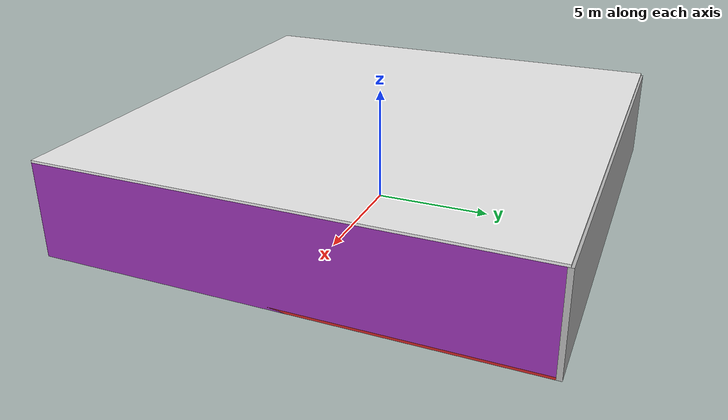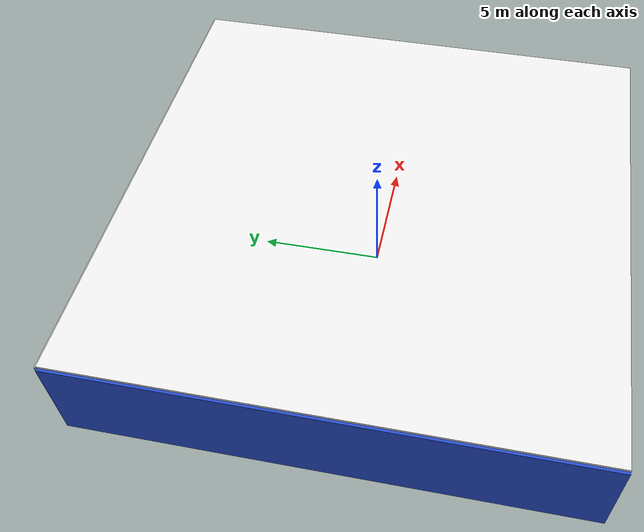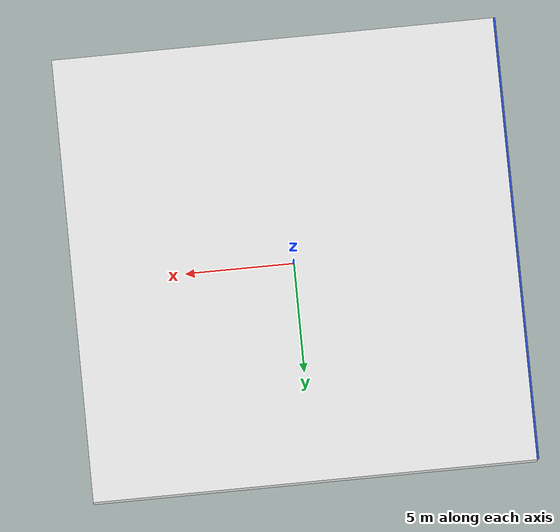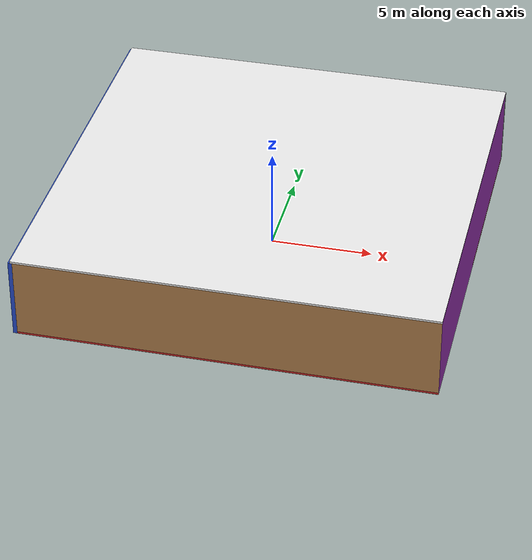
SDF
<sdf version="1.4">
 <world name="default">
  <physics type="ode">
   <max_step_size>0.001</max_step_size>
   <real_time_factor>1</real_time_factor>
   <real_time_update_rate>1000</real_time_update_rate>
   <gravity>0 0 -9.8</gravity>
  </physics>
  <scene><ambient>0.4 0.4 0.4 1</ambient><background>0.7 0.7 0.7 1</background><shadows>1</shadows></scene>
  <model name="Surrounding">
   <static>1</static>
   <link name="Ceiling">
    <collision name="Ceiling_Collision"><geometry><box><size>20 20 0.1</size></box></geometry></collision>
    <visual name="Ceiling_Visual">
     <geometry><box><size>20 20 0.1</size></box></geometry>
     <material>
      <script><uri>file://media/materials/scripts/gazebo.material</uri><name>Gazebo/White</name></script>
     </material>
    </visual>
    <pose>0 0 4.05 0 0 0</pose>
   </link>
   <link name="Wall_South">
    <collision name="Wall_South_Collision">
     <geometry><box><size>20 0 4</size></box></geometry>
     <pose>0 0 2 0 -0 0</pose>
    </collision>
    <visual name="Wall_South_Visual">
     <pose>0 0 2 0 -0 0</pose>
     <geometry><box><size>20 0 4</size></box></geometry>
     <material>
      <script><uri>file://media/materials/scripts/gazebo.material</uri><name>Gazebo/WoodPallet</name></script>
     </material>
    </visual>
    <velocity_decay><linear>0</linear><angular>0</angular></velocity_decay>
    <pose>0 -10 0 0 -0 0</pose>
   </link>
   <link name="Wall_East">
    <collision name="Wall_21_Collision">
     <geometry><box><size>20 0 4</size></box></geometry>
     <pose>0 0 2 0 -0 0</pose>
    </collision>
    <visual name="Wall_21_Visual">
     <pose>0 0 2 0 -0 0</pose>
     <geometry><box><size>20 0 4</size></box></geometry>
     <material>
      <script><uri>file://media/materials/scripts/gazebo.material</uri><name>Gazebo/Purple</name></script>
     </material>
    </visual>
    <velocity_decay><linear>0</linear><angular>0</angular></velocity_decay>
    <pose>10 0 0 0 -0 1.5708</pose>
   </link>
   <link name="Wall_North">
    <collision name="Wall_22_Collision">
     <geometry><box><size>20 0.2 4</size></box></geometry>
     <pose>0 0 2 0 -0 0</pose>
    </collision>
    <visual name="Wall_22_Visual">
     <pose>0 0 2 0 -0 0</pose>
     <geometry><box><size>20 0.2 4</size></box></geometry>
     <material>
      <script><uri>file://media/materials/scripts/gazebo.material</uri><name>Gazebo/JointAnchor</name></script>
     </material>
    </visual>
    <velocity_decay><linear>0</linear><angular>0</angular></velocity_decay>
    <pose>0 10 0 0 -0 0</pose>
   </link>
   <link name="Wall_West">
    <collision name="Wall_23_Collision">
     <geometry><box><size>20 0.2 4</size></box></geometry>
     <pose>0 0 2 0 -0 0</pose>
    </collision>
    <visual name="Wall_23_Visual">
     <pose>0 0 2 0 -0 0</pose>
     <geometry><box><size>20 0.2 4</size></box></geometry>
     <material>
      <script><uri>file://media/materials/scripts/gazebo.material</uri><name>Gazebo/Blue</name></script>
     </material>
    </visual>
    <velocity_decay><linear>0</linear><angular>0</angular></velocity_decay>
    <pose>-10 0 0 0 0 -1.5708</pose>
   </link>
   <link name="Ground_link">
    <collision name="collision">
     <pose>0 0 .05 0 -0 0</pose>
     <geometry><box><size>20 20 0.1</size></box></geometry>
    </collision>
    <visual name="visual">
     <pose>0 0 .05 0 -0 0</pose>
     <geometry><box><size>20 20 0.1</size></box></geometry>
     <material>
      <script><uri>file://media/materials/scripts/gazebo.material</uri><name>Gazebo/RedBright</name></script>
     </material>
    </visual>
   </link>
   <static>1</static>
  </model>
  <spherical_coordinates>
   <surface_model>EARTH_WGS84</surface_model>
   <latitude_deg>0</latitude_deg>
   <longitude_deg>0</longitude_deg>
   <elevation>0</elevation>
   <heading_deg>0</heading_deg>
  </spherical_coordinates>
  <light name="lightball_0" type="diffuse">
   <diffuse>0.8 0.8 0.8 1</diffuse>
   <specular>0.2 0.2 0.2 1</specular>
   <attenuation>
    <range>100</range>
    <constant>0.7</constant>
    <linear>0.01</linear>
    <quadratic>0.001</quadratic>
   </attenuation>
   <direction>-0.5 0.1 -0.9</direction>
   <pose>-4.49751051498 -5.59193023315 2.21832453821 0 0 0</pose>
  </light>
  <light name="lightball_1" type="diffuse">
   <diffuse>0.8 0.8 0.8 1</diffuse>
   <specular>0.2 0.2 0.2 1</specular>
   <attenuation>
    <range>100</range>
    <constant>0.7</constant>
    <linear>0.01</linear>
    <quadratic>0.001</quadratic>
   </attenuation>
   <direction>-0.5 0.1 -0.9</direction>
   <pose>6.53880903858 -7.80601133292 0.598640775638 0 0 0</pose>
  </light>
  <light name="lightball_2" type="diffuse">
   <diffuse>0.8 0.8 0.8 1</diffuse>
   <specular>0.2 0.2 0.2 1</specular>
   <attenuation>
    <range>100</range>
    <constant>0.7</constant>
    <linear>0.01</linear>
    <quadratic>0.001</quadratic>
   </attenuation>
   <direction>-0.5 0.1 -0.9</direction>
   <pose>1.22038702305 -8.69369930196 3.23966664445 0 0 0</pose>
  </light>
  <light name="lightball_3" type="diffuse">
   <diffuse>0.8 0.8 0.8 1</diffuse>
   <specular>0.2 0.2 0.2 1</specular>
   <attenuation>
    <range>100</range>
    <constant>0.7</constant>
    <linear>0.01</linear>
    <quadratic>0.001</quadratic>
   </attenuation>
   <direction>-0.5 0.1 -0.9</direction>
   <pose>9.14038331406 5.18639408503 1.58182995689 0 0 0</pose>
  </light>
  <light name="lightball_4" type="diffuse">
   <diffuse>0.8 0.8 0.8 1</diffuse>
   <specular>0.2 0.2 0.2 1</specular>
   <attenuation>
    <range>100</range>
    <constant>0.7</constant>
    <linear>0.01</linear>
    <quadratic>0.001</quadratic>
   </attenuation>
   <direction>-0.5 0.1 -0.9</direction>
   <pose>8.65825208568 -3.82475675051 2.29074679532 0 0 0</pose>
  </light>
  <light name="lightball_5" type="diffuse">
   <diffuse>0.8 0.8 0.8 1</diffuse>
   <specular>0.2 0.2 0.2 1</specular>
   <attenuation>
    <range>100</range>
    <constant>0.7</constant>
    <linear>0.01</linear>
    <quadratic>0.001</quadratic>
   </attenuation>
   <direction>-0.5 0.1 -0.9</direction>
   <pose>-5.01670364142 6.30574865178 0.613983158348 0 0 0</pose>
  </light>
  <light name="lightball_6" type="diffuse">
   <diffuse>0.8 0.8 0.8 1</diffuse>
   <specular>0.2 0.2 0.2 1</specular>
   <attenuation>
    <range>100</range>
    <constant>0.7</constant>
    <linear>0.01</linear>
    <quadratic>0.001</quadratic>
   </attenuation>
   <direction>-0.5 0.1 -0.9</direction>
   <pose>8.78992727267 0.187738970657 0.538570656514 0 0 0</pose>
  </light>
  <light name="lightball_7" type="diffuse">
   <diffuse>0.8 0.8 0.8 1</diffuse>
   <specular>0.2 0.2 0.2 1</specular>
   <attenuation>
    <range>100</range>
    <constant>0.7</constant>
    <linear>0.01</linear>
    <quadratic>0.001</quadratic>
   </attenuation>
   <direction>-0.5 0.1 -0.9</direction>
   <pose>-7.629699873 7.15707454468 3.17680571074 0 0 0</pose>
  </light>
  <light name="lightball_8" type="diffuse">
   <diffuse>0.8 0.8 0.8 1</diffuse>
   <specular>0.2 0.2 0.2 1</specular>
   <attenuation>
    <range>100</range>
    <constant>0.7</constant>
    <linear>0.01</linear>
    <quadratic>0.001</quadratic>
   </attenuation>
   <direction>-0.5 0.1 -0.9</direction>
   <pose>6.27069914631 3.05306684486 2.47515954054 0 0 0</pose>
  </light>
  <include>
   <uri>model://construction_cone</uri>
   <pose>-7.01785185283 4.34645106503 0 0 0 1.67192869096</pose>
  </include>
  <include><uri>model://table</uri><pose>-0.889590872578 -8.50125711358 0 0 0 0.652116965193</pose></include>
  <include><uri>model://cabinet</uri><pose>6.33344386577 -6.49670188204 0 0 0 1.67661615632</pose></include>
  <include>
   <uri>model://robocup_3Dsim_goal</uri>
   <pose>6.44044280286 -4.75675545887 0 0 0 2.73116496972</pose>
  </include>
  <include><uri>model://cabinet</uri><pose>6.48378490072 4.6773958391 0 0 0 2.71438202396</pose></include>
 </world>
</sdf>

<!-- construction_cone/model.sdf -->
<sdf version="1.5">
  <model name="Construction Cone">
    <link name="link">
      <collision name="collision">
        <geometry>
          <mesh>
            <scale>10 10 10</scale>
            <uri>file://isr-testbed/construction_cone/meshes/construction_cone.dae</uri>
          </mesh>
        </geometry>
      </collision>
      <visual name="visual">
        <geometry>
          <mesh>
            <scale>10 10 10</scale>
            <uri>file://isr-testbed/construction_cone/meshes/construction_cone.dae</uri>
          </mesh>
        </geometry>
      </visual>
    </link>
  </model>
</sdf>

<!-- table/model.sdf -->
<sdf version="1.5">
  <model name="table">
    <static>true</static>
    <link name="link">
      <collision name="surface">
        <pose>0 0 1.0 0 0 0</pose>
        <geometry>
          <box>
            <size>1.5 0.8 0.03</size>
          </box>
        </geometry>
        <surface>
          <friction>
            <ode>
              <mu>0.6</mu>
              <mu2>0.6</mu2>
            </ode>
          </friction>
        </surface>
      </collision>
      <visual name="visual1">
        <pose>0 0 1.0 0 0 0</pose>
        <geometry>
          <box>
            <size>1.5 0.8 0.03</size>
          </box>
        </geometry>
        <material>
          <script>
            <uri>model://media/materials/scripts/gazebo.material</uri>
            <name>Gazebo/Wood</name>
          </script>
        </material>
      </visual>
      <collision name="front_left_leg">
        <pose>0.68 0.38 0.5 0 0 0</pose>
        <geometry>
          <cylinder>
            <radius>0.02</radius>
            <length>1.0</length>
          </cylinder>
        </geometry>
      </collision>
      <visual name="front_left_leg">
        <pose>0.68 0.38 0.5 0 0 0</pose>
        <geometry>
          <cylinder>
            <radius>0.02</radius>
            <length>1.0</length>
          </cylinder>
        </geometry>
        <material>
          <script>
            <uri>model://media/materials/scripts/gazebo.material</uri>
            <name>Gazebo/Grey</name>
          </script>
        </material>
      </visual>
      <collision name="front_right_leg">
        <pose>0.68 -0.38 0.5 0 0 0</pose>
        <geometry>
          <cylinder>
            <radius>0.02</radius>
            <length>1.0</length>
          </cylinder>
        </geometry>
      </collision>
      <visual name="front_right_leg">
        <pose>0.68 -0.38 0.5 0 0 0</pose>
        <geometry>
          <cylinder>
            <radius>0.02</radius>
            <length>1.0</length>
          </cylinder>
        </geometry>
        <material>
          <script>
            <uri>model://media/materials/scripts/gazebo.material</uri>
            <name>Gazebo/Grey</name>
          </script>
        </material>
      </visual>
      <collision name="back_right_leg">
        <pose>-0.68 -0.38 0.5 0 0 0</pose>
        <geometry>
          <cylinder>
            <radius>0.02</radius>
            <length>1.0</length>
          </cylinder>
        </geometry>
      </collision>
      <visual name="back_right_leg">
        <pose>-0.68 -0.38 0.5 0 0 0</pose>
        <geometry>
          <cylinder>
            <radius>0.02</radius>
            <length>1.0</length>
          </cylinder>
        </geometry>
        <material>
          <script>
            <uri>model://media/materials/scripts/gazebo.material</uri>
            <name>Gazebo/Grey</name>
          </script>
        </material>
      </visual>
      <collision name="back_left_leg">
        <pose>-0.68 0.38 0.5 0 0 0</pose>
        <geometry>
          <cylinder>
            <radius>0.02</radius>
            <length>1.0</length>
          </cylinder>
        </geometry>
      </collision>
      <visual name="back_left_leg">
        <pose>-0.68 0.38 0.5 0 0 0</pose>
        <geometry>
          <cylinder>
            <radius>0.02</radius>
            <length>1.0</length>
          </cylinder>
        </geometry>
        <material>
          <script>
            <uri>model://media/materials/scripts/gazebo.material</uri>
            <name>Gazebo/Grey</name>
          </script>
        </material>
      </visual>
    </link>
  </model>
</sdf>

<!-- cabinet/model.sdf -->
<sdf version="1.5">
  <model name="cabinet">
    <static>true</static>
    <link name="cabinet_bottom_plate">
      <inertial>
        <pose>0 0 -1 0 0 0</pose>
        <inertia>
          <ixx>2.050000</ixx>
          <ixy>0</ixy>
          <ixz>0</ixz>
          <iyy>2.050000</iyy>
          <iyz>0</iyz>
          <izz>2.050000</izz>
        </inertia>
        <mass>25.000000</mass>
      </inertial>
      <collision name="cabinet_bottom_plate_geom">
        <pose>0 0 0.010000 0 0 0</pose>
        <geometry>
          <box>
            <size>0.450000 0.450000 0.020000</size>
          </box>
        </geometry>
      </collision>
      <visual name="cabinet_bottom_plate_geom_visual">
        <pose>0 0 0.010000 0 0 0</pose>
        <geometry>
          <box>
            <size>0.450000 0.450000 0.020000</size>
          </box>
        </geometry>
        <material>
          <script>
            <uri>model://media/materials/scripts/gazebo.material</uri>
            <name>Gazebo/Wood</name>
          </script>
        </material>
      </visual>
      <collision name="cabinet_bottom_plate_geom_cabinet_back_plate">
        <pose>0.235000 0 0.510000 0 0 0</pose>
        <geometry>
          <box>
            <size>0.020000 0.450000 1.020000</size>
          </box>
        </geometry>
      </collision>
      <visual name="cabinet_bottom_plate_geom_cabinet_back_plate_visual">
        <pose>0.235000 0 0.510000 0 0 0</pose>
        <geometry>
          <box>
            <size>0.020000 0.450000 1.020000</size>
          </box>
        </geometry>
        <material>
          <script>
            <uri>model://media/materials/scripts/gazebo.material</uri>
            <name>Gazebo/Wood</name>
          </script>
        </material>
      </visual>
      <collision name="cabinet_bottom_plate_geom_cabinet_left_plate">
        <pose>0 0.235000 0.510000 0 0 0</pose>
        <geometry>
          <box>
            <size>0.450000 0.020000 1.020000</size>
          </box>
        </geometry>
      </collision>
      <visual name="cabinet_bottom_plate_geom_cabinet_left_plate_visual">
        <pose>0 0.235000 0.510000 0 0 0</pose>
        <geometry>
          <box>
            <size>0.450000 0.020000 1.020000</size>
          </box>
        </geometry>
        <material>
          <script>
            <uri>model://media/materials/scripts/gazebo.material</uri>
            <name>Gazebo/Wood</name>
          </script>
        </material>
      </visual>
      <collision name="cabinet_bottom_plate_geom_cabinet_middle_plate">
        <pose>0 0 0.510000 0 0 0</pose>
        <geometry>
          <box>
            <size>0.450000 0.450000 0.020000</size>
          </box>
        </geometry>
      </collision>
      <visual name="cabinet_bottom_plate_geom_cabinet_middle_plate_visual">
        <pose>0 0 0.510000 0 0 0</pose>
        <geometry>
          <box>
            <size>0.450000 0.450000 0.020000</size>
          </box>
        </geometry>
        <material>
          <script>
            <uri>model://media/materials/scripts/gazebo.material</uri>
            <name>Gazebo/Wood</name>
          </script>
        </material>
      </visual>
      <collision name="cabinet_bottom_plate_geom_cabinet_right_plate">
        <pose>0 -0.235000 0.510000 0 0 0</pose>
        <geometry>
          <box>
            <size>0.450000 0.020000 1.020000</size>
          </box>
        </geometry>
      </collision>
      <visual name="cabinet_bottom_plate_geom_cabinet_right_plate_visual">
        <pose>0 -0.235000 0.510000 0 0 0</pose>
        <geometry>
          <box>
            <size>0.450000 0.020000 1.020000</size>
          </box>
        </geometry>
        <material>
          <script>
            <uri>model://media/materials/scripts/gazebo.material</uri>
            <name>Gazebo/Wood</name>
          </script>
        </material>
      </visual>
      <collision name="cabinet_bottom_plate_geom_cabinet_top_plate">
        <pose>0 0 1.010000 0 0 0</pose>
        <geometry>
          <box>
            <size>0.450000 0.450000 0.020000</size>
          </box>
        </geometry>
      </collision>
      <visual name="cabinet_bottom_plate_geom_cabinet_top_plate_visual">
        <pose>0 0 1.010000 0 0 0</pose>
        <geometry>
          <box>
            <size>0.450000 0.450000 0.020000</size>
          </box>
        </geometry>
        <material>
          <script>
            <uri>model://media/materials/scripts/gazebo.material</uri>
            <name>Gazebo/Wood</name>
          </script>
        </material>
      </visual>
    </link>
  </model>
</sdf>

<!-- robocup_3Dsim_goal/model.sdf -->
<sdf version="1.5">
  <model name="robocup_3d_goal">
    <static>true</static>
    <link name="left_post">
      <pose>0 1.05 0.45 0 0 0</pose>
      <collision name="collision">
        <geometry>
          <cylinder>
            <radius>0.05</radius>
            <length>0.9</length>
          </cylinder>
        </geometry>
      </collision>
      <visual name="visual">
        <geometry>
          <cylinder>
            <radius>0.05</radius>
            <length>0.9</length>
          </cylinder>
        </geometry>
        <material>
          <script>
            <uri>file://media/materials/scripts/gazebo.material</uri>
            <name>Gazebo/ZincYellow</name>
          </script>
        </material>
      </visual>
    </link>
    <link name="left_support_horiz_lower">
      <pose>0.30 1.05 0.01 0 0 0</pose>
      <collision name="collision">
        <geometry>
          <box>
            <size>0.50 0.02 0.02</size>
          </box>
        </geometry>
      </collision>
      <visual name="visual">
        <geometry>
          <box>
            <size>0.50 0.02 0.02</size>
          </box>
        </geometry>
        <material>
          <script>
            <uri>file://media/materials/scripts/gazebo.material</uri>
            <name>Gazebo/White</name>
          </script>
        </material>
      </visual>
    </link>
    <link name="left_support_horiz_upper">
      <pose>0.30 1.05 0.79 0 0 0</pose>
      <collision name="collision">
        <geometry>
          <box>
            <size>0.50 0.02 0.02</size>
          </box>
        </geometry>
      </collision>
      <visual name="visual">
        <geometry>
          <box>
            <size>0.50 0.02 0.02</size>
          </box>
        </geometry>
        <material>
          <script>
            <uri>file://media/materials/scripts/gazebo.material</uri>
            <name>Gazebo/White</name>
          </script>
        </material>
      </visual>
    </link>
    <link name="left_support_vertical">
      <pose>0.56 1.05 0.4 0 1.5708 0</pose>
      <collision name="collision">
        <geometry>
          <box>
            <size>0.80 0.02 0.02</size>
          </box>
        </geometry>
      </collision>
      <visual name="visual">
        <geometry>
          <box>
            <size>0.80 0.02 0.02</size>
          </box>
        </geometry>
        <material>
          <script>
            <uri>file://media/materials/scripts/gazebo.material</uri>
            <name>Gazebo/White</name>
          </script>
        </material>
      </visual>
    </link>
    <link name="right_support_horiz_lower">
      <pose>0.30 -1.05 0.01 0 0 0</pose>
      <collision name="collision">
        <geometry>
          <box>
            <size>0.50 0.02 0.02</size>
          </box>
        </geometry>
      </collision>
      <visual name="visual">
        <geometry>
          <box>
            <size>0.50 0.02 0.02</size>
          </box>
        </geometry>
        <material>
          <script>
            <uri>file://media/materials/scripts/gazebo.material</uri>
            <name>Gazebo/White</name>
          </script>
        </material>
      </visual>
    </link>
    <link name="right_support_horiz_upper">
      <pose>0.30 -1.05 0.79 0 0 0</pose>
      <collision name="collision">
        <geometry>
          <box>
            <size>0.50 0.02 0.02</size>
          </box>
        </geometry>
      </collision>
      <visual name="visual">
        <geometry>
          <box>
            <size>0.50 0.02 0.02</size>
          </box>
        </geometry>
        <material>
          <script>
            <uri>file://media/materials/scripts/gazebo.material</uri>
            <name>Gazebo/White</name>
          </script>
        </material>
      </visual>
    </link>
    <link name="right_support_vertical">
      <pose>0.56 -1.05 0.4 0 1.5708 0</pose>
      <collision name="collision">
        <geometry>
          <box>
            <size>0.80 0.02 0.02</size>
          </box>
        </geometry>
      </collision>
      <visual name="visual">
        <geometry>
          <box>
            <size>0.80 0.02 0.02</size>
          </box>
        </geometry>
        <material>
          <script>
            <uri>file://media/materials/scripts/gazebo.material</uri>
            <name>Gazebo/White</name>
          </script>
        </material>
      </visual>
    </link>
    <link name="center_support_horiz_lower">
      <pose>0.56 0 0.01 0 1.5708 0</pose>
      <collision name="collision">
        <geometry>
          <box>
            <size>0.02 2.08 0.02</size>
          </box>
        </geometry>
      </collision>
      <visual name="visual">
        <geometry>
          <box>
            <size>0.02 2.08 0.02</size>
          </box>
        </geometry>
        <material>
          <script>
            <uri>file://media/materials/scripts/gazebo.material</uri>
            <name>Gazebo/White</name>
          </script>
        </material>
      </visual>
    </link>
    <link name="center_support_horiz_upper">
      <pose>0.56 0 0.79 0 1.5708 0</pose>
      <collision name="collision">
        <geometry>
          <box>
            <size>0.02 2.08 0.02</size>
          </box>
        </geometry>
      </collision>
      <visual name="visual">
        <geometry>
          <box>
            <size>0.02 2.08 0.02</size>
          </box>
        </geometry>
        <material>
          <script>
            <uri>file://media/materials/scripts/gazebo.material</uri>
            <name>Gazebo/White</name>
          </script>
        </material>
      </visual>
    </link>
    <link name="right_post">
      <pose>0 -1.05 0.45 0 0 0</pose>
      <collision name="collision">
        <geometry>
          <cylinder>
            <radius>0.05</radius>
            <length>0.9</length>
          </cylinder>
        </geometry>
      </collision>
      <visual name="visual">
        <geometry>
          <cylinder>
            <radius>0.05</radius>
            <length>0.9</length>
          </cylinder>
        </geometry>
        <material>
          <script>
            <uri>file://media/materials/scripts/gazebo.material</uri>
            <name>Gazebo/ZincYellow</name>
          </script>
        </material>
      </visual>
    </link>
    <link name="crossbar">
      <pose>0 0 0.85 1.57 1.57 0</pose>
      <collision name="collision">
        <geometry>
          <cylinder>
            <radius>0.05</radius>
            <length>2.0</length>
          </cylinder>
        </geometry>
      </collision>
      <visual name="visual">
        <geometry>
          <cylinder>
            <radius>0.05</radius>
            <length>2.0</length>
          </cylinder>
        </geometry>
        <material>
          <script>
            <uri>file://media/materials/scripts/gazebo.material</uri>
            <name>Gazebo/ZincYellow</name>
          </script>
        </material>
      </visual>
    </link>
    <link name="center_net">
      <pose>0.56 0 0.40 0 0 0</pose>
      <collision name="collision">
        <geometry>
          <box>
            <size>0.01 2.1 0.80</size>
          </box>
        </geometry>
      </collision>
      <visual name="visual">
        <geometry>
          <box>
            <size>0.01 2.1 0.80</size>
          </box>
        </geometry>
        <material>
          <script>
            <uri>model://../model_source/models/robocup09_spl_field/materials/scripts/</uri>
            <uri>model://../model_source/models/robocup09_spl_field/materials/textures/</uri>
            <name>RoboCup/Net</name>
          </script>
        </material>
      </visual>
    </link>
    <link name="left_net">
      <pose>0.30 1.05 0.40 0 0 0</pose>
      <collision name="collision">
        <geometry>
          <box>
            <size>0.50 0.01 0.76</size>
          </box>
        </geometry>
      </collision>
      <visual name="visual">
        <geometry>
          <box>
            <size>0.50 0.01 0.76</size>
          </box>
        </geometry>
        <material>
          <script>
            <uri>model://../model_source/models/robocup09_spl_field/materials/scripts/</uri>
            <uri>model://../model_source/models/robocup09_spl_field/materials/textures/</uri>
            <name>RoboCup/Net</name>
          </script>
        </material>
      </visual>
    </link>
    <link name="right_net">
      <pose>0.30 -1.05 0.40 0 0 0</pose>
      <collision name="collision">
        <geometry>
          <box>
            <size>0.50 0.01 0.76</size>
          </box>
        </geometry>
      </collision>
      <visual name="visual">
        <geometry>
          <box>
            <size>0.50 0.01 0.76</size>
          </box>
        </geometry>
        <material>
          <script>
            <uri>model://../model_source/models/robocup09_spl_field/materials/scripts/</uri>
            <uri>model://../model_source/models/robocup09_spl_field/materials/textures/</uri>
            <name>RoboCup/Net</name>
          </script>
        </material>
      </visual>
    </link>
  </model>
</sdf>
